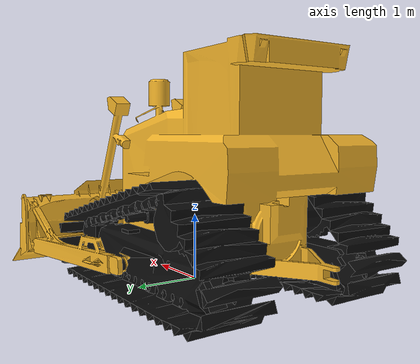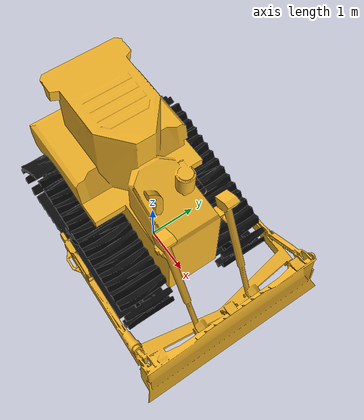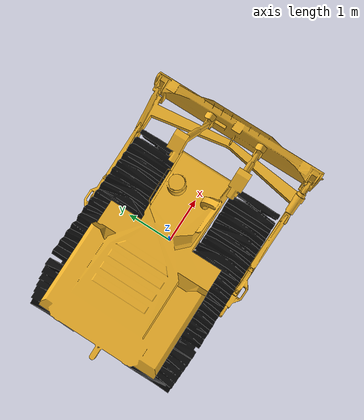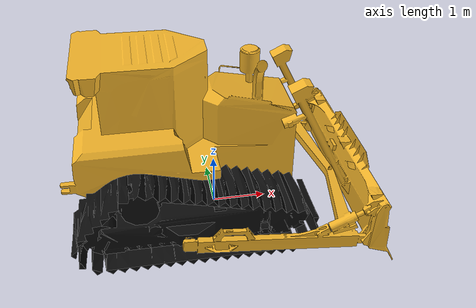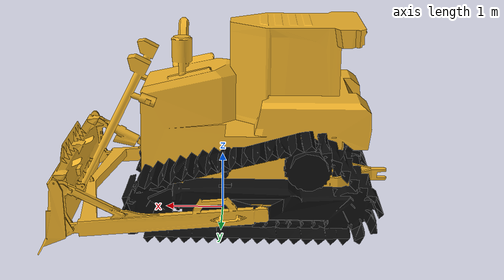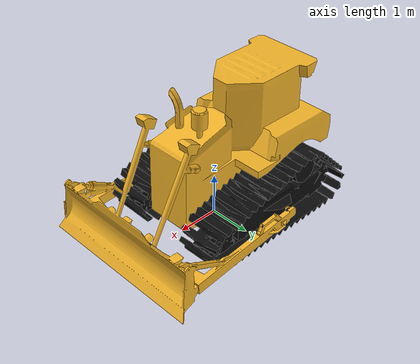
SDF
<?xml version="1.0" encoding="UTF-8"?>
<!--
  Copyright 2024 DeepX, Inc. All rights reserved

-->
<sdf version="1.9">
   <model name='CAT_D6XE'>
      <include merge="true">
         <uri>CAT_D6XE_base</uri>
      </include>

      <!-- LOCOMOTION PLUGINS -->
      <plugin name="gz::sim::systems::TrackedVehicle" filename="gz-sim-tracked-vehicle-system">
         <left_track><link>left_track</link></left_track><!--define-->
         <right_track><link>right_track</link></right_track><!--define-->
         <tracks_separation>2.16</tracks_separation><!--edit-->
         <tracks_height>2.0</tracks_height><!--edit-->
         <steering_efficiency>0.5</steering_efficiency><!--edit-->
      </plugin>

      <plugin name='gz::sim::systems::TrackController' filename='gz-sim-track-controller-system'>
         <link>left_track</link>
         <min_velocity>-3.25</min_velocity>
         <max_velocity>3.25</max_velocity>
      </plugin>
      <plugin name='gz::sim::systems::TrackController' filename='gz-sim-track-controller-system'>
         <link>right_track</link>
         <min_velocity>-3.25</min_velocity>
         <max_velocity>3.25</max_velocity>
      </plugin>

      <!-- Moving Forward: W -->
      <plugin filename="gz-sim-triggered-publisher-system"
              name="gz::sim::systems::TriggeredPublisher">
          <input type="gz.msgs.Int32" topic="/keyboard/keypress">
              <match field="data">87</match>
          </input>
          <output type="gz.msgs.Twist" topic="/model/CAT_D6XE/cmd_vel">
              linear: {x: 3.25}, angular: {z: 0.0}
          </output>
      </plugin>

      <!-- Moving Backward: X -->
      <plugin filename="gz-sim-triggered-publisher-system"
              name="gz::sim::systems::TriggeredPublisher">
          <input type="gz.msgs.Int32" topic="/keyboard/keypress">
              <match field="data">88</match>
          </input>
          <output type="gz.msgs.Twist" topic="/model/CAT_D6XE/cmd_vel">
              linear: {x: -3.25}, angular: {z: 0.0}
          </output>
      </plugin>

      <!-- Stop: S -->
      <plugin filename="gz-sim-triggered-publisher-system"
              name="gz::sim::systems::TriggeredPublisher">
          <input type="gz.msgs.Int32" topic="/keyboard/keypress">
              <match field="data">83</match>
          </input>
          <output type="gz.msgs.Twist" topic="/model/CAT_D6XE/cmd_vel">
              linear: {x: 0.0}, angular: {z: 0.0}
          </output>
      </plugin>

      <!-- Left: A -->
      <plugin filename="gz-sim-triggered-publisher-system"
              name="gz::sim::systems::TriggeredPublisher">
          <input type="gz.msgs.Int32" topic="/keyboard/keypress">
              <match field="data">65</match>
          </input>
          <output type="gz.msgs.Twist" topic="/model/CAT_D6XE/cmd_vel">
              linear: {x: 0.0}, angular: {z: 1.0}
          </output>
      </plugin>

      <!-- Right: D -->
      <plugin filename="gz-sim-triggered-publisher-system"
              name="gz::sim::systems::TriggeredPublisher">
          <input type="gz.msgs.Int32" topic="/keyboard/keypress">
              <match field="data">68</match>
          </input>
          <output type="gz.msgs.Twist" topic="/model/CAT_D6XE/cmd_vel">
              linear: {x: 0.0}, angular: {z: -1.0}
          </output>
      </plugin>

      <!-- Forward Left: Q -->
      <plugin filename="gz-sim-triggered-publisher-system"
              name="gz::sim::systems::TriggeredPublisher">
          <input type="gz.msgs.Int32" topic="/keyboard/keypress">
              <match field="data">81</match>
          </input>
          <output type="gz.msgs.Twist" topic="/model/CAT_D6XE/cmd_vel">
              linear: {x: 3.25}, angular: {z: 1.0}
          </output>
      </plugin>

      <!-- Forward Right: E -->
      <plugin filename="gz-sim-triggered-publisher-system"
              name="gz::sim::systems::TriggeredPublisher">
          <input type="gz.msgs.Int32" topic="/keyboard/keypress">
              <match field="data">69</match>
          </input>
          <output type="gz.msgs.Twist" topic="/model/CAT_D6XE/cmd_vel">
              linear: {x: 3.25}, angular: {z: -1.0}
          </output>
      </plugin>

      <!-- Back Left: Z -->
      <plugin filename="gz-sim-triggered-publisher-system"
              name="gz::sim::systems::TriggeredPublisher">
          <input type="gz.msgs.Int32" topic="/keyboard/keypress">
              <match field="data">90</match>
          </input>
          <output type="gz.msgs.Twist" topic="/model/CAT_D6XE/cmd_vel">
              linear: {x: -3.25}, angular: {z: 1.0}
          </output>
      </plugin>

      <!-- Back Right: C -->
      <plugin filename="gz-sim-triggered-publisher-system"
              name="gz::sim::systems::TriggeredPublisher">
          <input type="gz.msgs.Int32" topic="/keyboard/keypress">
              <match field="data">67</match>
          </input>
          <output type="gz.msgs.Twist" topic="/model/CAT_D6XE/cmd_vel">
              linear: {x: -3.25}, angular: {z: -1.0}
          </output>
      </plugin>
   </model>
</sdf>

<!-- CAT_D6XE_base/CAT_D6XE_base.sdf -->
<!--
  Copyright 2024 DeepX, Inc. All rights reserved
-->
<sdf version="1.9">
   <model name="CAT_D6XE">
      <pose>0 0 0 0 0 0</pose>

      <link name="body_link">
         <pose>0 0 0 0 0 0</pose>
         <inertial>
            <mass>10000</mass>
         </inertial>
         <visual name="body_link_visual">
            <pose relative_to="body_link">0 0 0 0 0 0</pose>
            <geometry>
               <mesh>
                  <uri>./meshes/body.stl</uri>
               </mesh>
            </geometry>
            <material>
               <ambient>0.953 0.707 0.164 1.0</ambient>
               <diffuse>0.953 0.707 0.164 1.0</diffuse>
               <specular>0.2 0.2 0.2 1.0</specular>
            </material>
         </visual>
      </link>

      <joint name="tracks_joint" type="fixed">
         <pose>0 0 0 0 0 0</pose>
         <parent>body_link</parent>
         <child>tracks_link</child>
      </joint>

      <joint name="blade_joint" type="fixed">
         <pose>0 0 0 0 0 0</pose>
         <parent>body_link</parent>
         <child>blade_link</child>
      </joint>

      <link name="blade_link">
         <pose>0 0 0 0 0 0</pose>
         <inertial>
            <mass>3000</mass>
         </inertial>
         <visual name="body_link_visual">
            <pose relative_to="body_link">0 0 0 0 0 0</pose>
            <geometry>
               <mesh>
                  <uri>./meshes/blade.stl</uri>
               </mesh>
            </geometry>
            <material>
               <ambient>0.953 0.707 0.164 1.0</ambient>
               <diffuse>0.953 0.707 0.164 1.0</diffuse>
               <specular>0.2 0.2 0.2 1.0</specular>
            </material>
         </visual>
      </link>

      <link name="tracks_link">
         <!-- Only for the visual -->
         <pose>0 0 0 0 0 0</pose>
         <inertial>
            <mass>10000</mass>
         </inertial>
         <visual name="tracks_link_visual">
            <pose relative_to="body_link">0 0 0 0 0 0</pose>
            <geometry>
               <mesh>
                  <uri>./meshes/tracks.stl</uri>
               </mesh>
            </geometry>
            <material>
               <ambient>0.050 0.050 0.050 1.0</ambient>
               <diffuse>0.050 0.050 0.050 1.0</diffuse>
               <specular>0.2 0.2 0.2 1.0</specular>
            </material>
         </visual>
      </link>

      <link name='left_track'>
         <pose>-0.5 0.965 0.79 0 0 0</pose>
         <gravity>1</gravity>
         <kinematic>0</kinematic>
         <!-- Debug visual -->
         <collision name='left_track_collision'>
            <pose>0 0 0 0 0 0</pose>
            <geometry>
               <box>
                  <size>4.0 1.019 1.58</size>
               </box>
            </geometry>
            <surface>
               <friction>
                  <ode>
                     <mu>0.7</mu>
                     <mu2>150</mu2>
                     <fdir1>0 1 0</fdir1>
                  </ode>
               </friction>
            </surface>
         </collision>
      </link>

      <link name='right_track'>
         <pose>-0.5 -0.965 0.79 0 0 0</pose>
         <gravity>1</gravity>
         <kinematic>0</kinematic>
         <!-- Debug visual -->
         <collision name='right_track_collision'>
            <pose>0 0 0 0 0 0</pose>
            <geometry>
               <box>
                  <size>4.0 1.019 1.58</size>
               </box>
            </geometry>
            <surface>
               <friction>
                  <ode>
                     <mu>0.7</mu>
                     <mu2>150</mu2>
                     <fdir1>0 1 0</fdir1>
                  </ode>
               </friction>
            </surface>
         </collision>
      </link>

      <joint name='left_track_j' type='fixed'>
         <child>left_track</child>
         <parent>body_link</parent>
      </joint>
      <joint name='right_track_j' type='fixed'>
         <child>right_track</child>
         <parent>body_link</parent>
      </joint>

   </model>
</sdf>
